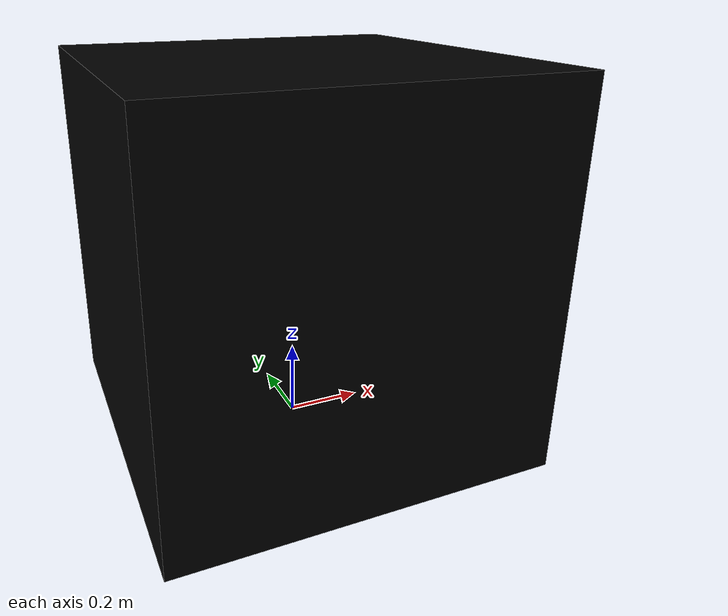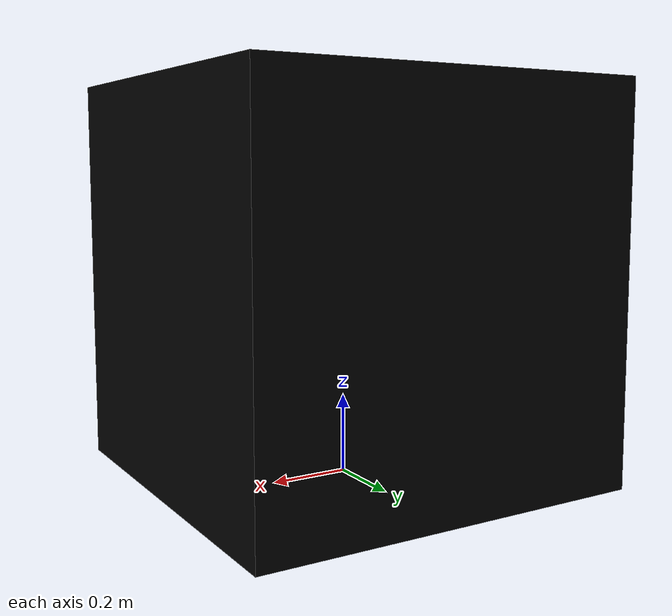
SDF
<sdf version="1.4">
<model name="dd_robot">
    <pose>0 0 0.5 0 0 0</pose>
    <link name="link">
        <inertial>
            <mass>1.0</mass>
            <inertia>
                <ixx>0.083</ixx>
                <ixy>0</ixy>
                <ixz>0</ixz>
                <iyy>0.083</iyy>
                <iyz>0</iyz>
                <izz>0.083</izz>
            </inertia>
        </inertial>
        <collision name="link_col">
            <geometry>
                <box>
                    <size> .99 .99 .99 </size>
                </box>
            </geometry>
        </collision>
        <visual name="link_vis">
            <material> <!-- Wheel material -->
                <ambient>0 0 0 1</ambient>
                <diffuse>0 0 0 1</diffuse>
                <specular>0 0 0 0</specular>
                <emissive>0 1 0 1</emissive>
            </material> <!-- End wheel material -->
            <geometry>
                <box>
                    <size> .99 .99 .99 </size>
                </box>
            </geometry>
        </visual>
    </link>

</model>
</sdf>
